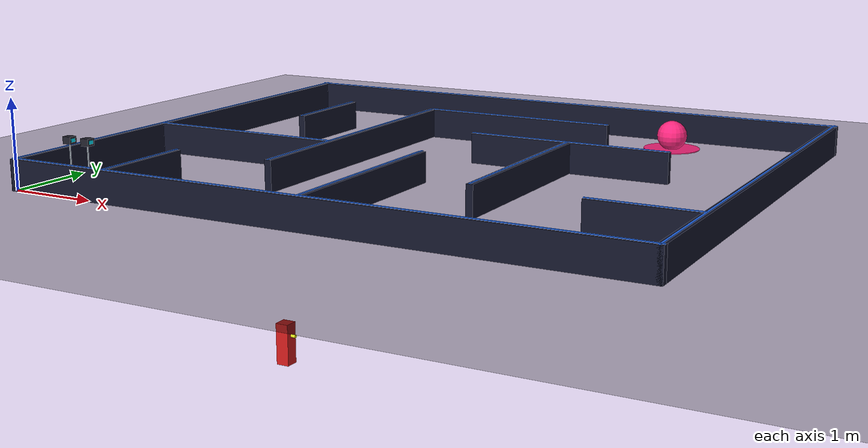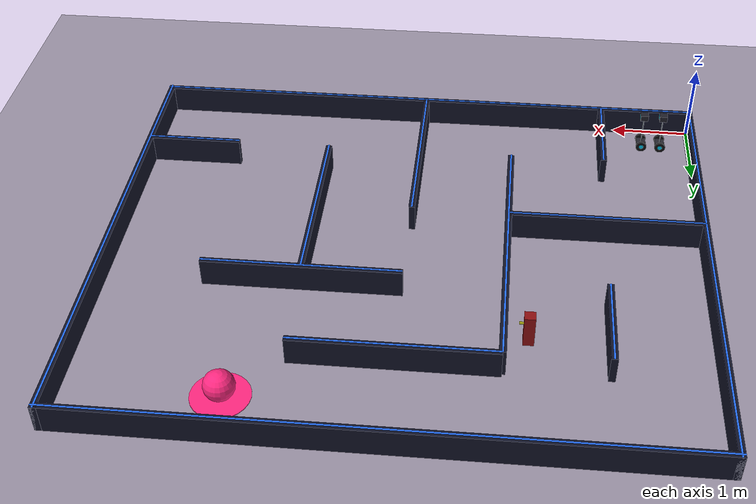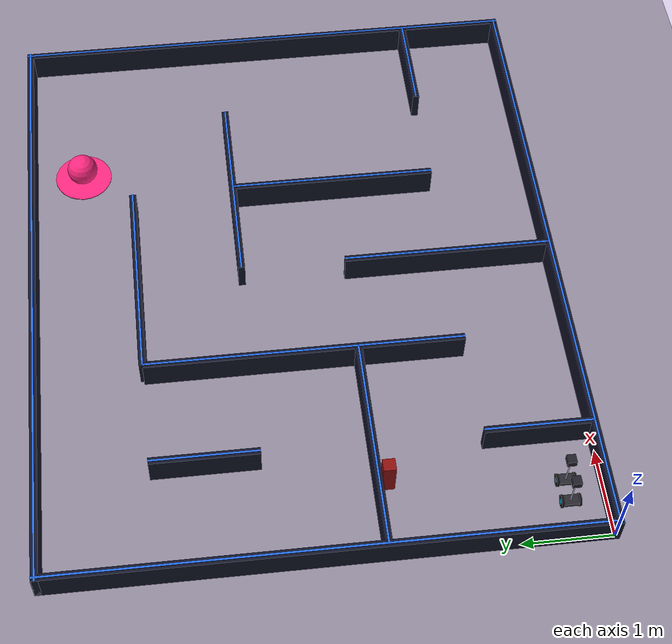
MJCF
<mujoco model="carl_elite">
  <compiler angle="radian" autolimits="true"/>
  <option gravity="0 0 -9.81" timestep="0.004166667" iterations="50" solver="Newton" tolerance="1e-10"/>

  <visual>
    <headlight ambient="0.28 0.28 0.33" diffuse="0.55 0.55 0.65" specular="0 0 0"/>
    <rgba haze="0.04 0.04 0.07 1"/>
    <map fogstart="7" fogend="18" znear="0.01"/>
    <quality shadowsize="4096"/>
  </visual>

  <asset>
    <texture name="grid" type="2d" builtin="checker" width="512" height="512"
             rgb1="0.035 0.042 0.090" rgb2="0.055 0.068 0.145"/>
    <material name="floor_mat"  texture="grid" texrepeat="10 10"
              reflectance="0.08" shininess="0.15" rgba="0.05 0.06 0.12 1"/>
    <material name="wall_mat"   rgba="0.07 0.08 0.16 1" reflectance="0.2" shininess="0.5"/>
    <material name="wall_glow"  rgba="0.15 0.45 1.0 1"  emission="0.6"  reflectance="0" shininess="1"/>
    <material name="chassis"    rgba="0.15 0.15 0.18 1" reflectance="0.2" shininess="0.6"/>
    <material name="tire"       rgba="0.05 0.05 0.06 1" reflectance="0"   shininess="0.2"/>
    <material name="hub"        rgba="0.0 0.75 0.9 1"   reflectance="0.4" shininess="0.9"/>
    <material name="neck_mat"   rgba="0.72 0.76 0.80 1" reflectance="0.3" shininess="0.7"/>
    <material name="head_mat"   rgba="0.12 0.12 0.16 1" reflectance="0.2" shininess="0.6"/>
    <material name="eye_mat"    rgba="0.0 0.9 1.0 1"    emission="0.5"  reflectance="0.5" shininess="1"/>
    <material name="goal_mat"   rgba="1.0 0.15 0.5 0.95" emission="0.7" reflectance="0.4" shininess="1"/>
  </asset>

  <default>
    <geom contype="1" conaffinity="1" condim="3"
          friction="0.85 0.005 0.0001"
          solimp="0.99 0.999 0.001" solref="0.004 1"/>
  </default>

  <worldbody>
    <!-- Lighting -->
    <light name="sun"  pos="3.6 3.0 7"  dir="-0.2 -0.2 -1" directional="true"
           ambient="0.22 0.22 0.28" diffuse="0.55 0.55 0.65" castshadow="true"/>
    <light name="fill" pos="0 0 5" dir="0.3 0.3 -1" directional="true"
           ambient="0.08 0.08 0.12" diffuse="0.18 0.22 0.32" castshadow="false"/>
    <light name="goal_spot" pos="5.4 5.4 2.8" dir="0 0 -1" directional="false"
           diffuse="0.7 0.08 0.35" attenuation="0 0.05 0.25" castshadow="false"/>

    <!-- Floor -->
    <geom name="floor" type="plane" size="12 12 0.1" pos="3.6 3.0 0" material="floor_mat"/>

    <!-- === MAZE WALLS (grid cell=1.2m) === -->
    <!-- Outer boundary -->
    <geom name="w_s"  type="box" size="3.64 0.04 0.175" pos="3.6  0.0  0.175" material="wall_mat"/>
    <geom name="w_n"  type="box" size="3.64 0.04 0.175" pos="3.6  6.0  0.175" material="wall_mat"/>
    <geom name="w_w"  type="box" size="0.04 3.04 0.175" pos="0.0  3.0  0.175" material="wall_mat"/>
    <geom name="w_e"  type="box" size="0.04 3.04 0.175" pos="7.2  3.0  0.175" material="wall_mat"/>
    <!-- Glow caps -->
    <geom name="wg_s" type="box" size="3.64 0.01 0.004" pos="3.6  0.0  0.354" material="wall_glow" contype="0" conaffinity="0"/>
    <geom name="wg_n" type="box" size="3.64 0.01 0.004" pos="3.6  6.0  0.354" material="wall_glow" contype="0" conaffinity="0"/>
    <geom name="wg_w" type="box" size="0.01 3.04 0.004" pos="0.0  3.0  0.354" material="wall_glow" contype="0" conaffinity="0"/>
    <geom name="wg_e" type="box" size="0.01 3.04 0.004" pos="7.2  3.0  0.354" material="wall_glow" contype="0" conaffinity="0"/>

    <!-- Internal walls -->
    <geom name="wi0" type="box" size="0.04 0.60 0.175" pos="1.2 0.6  0.175" material="wall_mat"/>
    <geom name="wi1" type="box" size="1.20 0.04 0.175" pos="1.2 2.4  0.175" material="wall_mat"/>
    <geom name="wi2" type="box" size="0.04 0.60 0.175" pos="1.2 4.2  0.175" material="wall_mat"/>
    <geom name="wi3" type="box" size="0.04 1.80 0.175" pos="2.4 3.0  0.175" material="wall_mat"/>
    <geom name="wi4" type="box" size="0.04 1.20 0.175" pos="3.6 1.2  0.175" material="wall_mat"/>
    <geom name="wi5" type="box" size="1.20 0.04 0.175" pos="3.6 4.8  0.175" material="wall_mat"/>
    <geom name="wi6" type="box" size="0.04 1.20 0.175" pos="4.8 2.4  0.175" material="wall_mat"/>
    <geom name="wi7" type="box" size="1.20 0.04 0.175" pos="4.8 3.6  0.175" material="wall_mat"/>
    <geom name="wi8" type="box" size="0.60 0.04 0.175" pos="6.6 1.2  0.175" material="wall_mat"/>
    <!-- Internal glow caps -->
    <geom name="wgi0" type="box" size="0.01 0.60 0.004" pos="1.2 0.6  0.354" material="wall_glow" contype="0" conaffinity="0"/>
    <geom name="wgi1" type="box" size="1.20 0.01 0.004" pos="1.2 2.4  0.354" material="wall_glow" contype="0" conaffinity="0"/>
    <geom name="wgi2" type="box" size="0.01 0.60 0.004" pos="1.2 4.2  0.354" material="wall_glow" contype="0" conaffinity="0"/>
    <geom name="wgi3" type="box" size="0.01 1.80 0.004" pos="2.4 3.0  0.354" material="wall_glow" contype="0" conaffinity="0"/>
    <geom name="wgi4" type="box" size="0.01 1.20 0.004" pos="3.6 1.2  0.354" material="wall_glow" contype="0" conaffinity="0"/>
    <geom name="wgi5" type="box" size="1.20 0.01 0.004" pos="3.6 4.8  0.354" material="wall_glow" contype="0" conaffinity="0"/>
    <geom name="wgi6" type="box" size="0.01 1.20 0.004" pos="4.8 2.4  0.354" material="wall_glow" contype="0" conaffinity="0"/>
    <geom name="wgi7" type="box" size="1.20 0.01 0.004" pos="4.8 3.6  0.354" material="wall_glow" contype="0" conaffinity="0"/>
    <geom name="wgi8" type="box" size="0.60 0.01 0.004" pos="6.6 1.2  0.354" material="wall_glow" contype="0" conaffinity="0"/>

    <!-- Goal beacon -->
    <geom name="goal_sphere" type="sphere"   size="0.18"      pos="5.4 5.4 0.18" material="goal_mat" contype="0" conaffinity="0"/>
    <geom name="goal_ring"   type="cylinder" size="0.34 0.005" pos="5.4 5.4 0.02" material="goal_mat" contype="0" conaffinity="0"/>

    <!-- === ROBOT A === -->
    <body name="base_A" pos="0.40 0.40 0.10">
      <freejoint name="fj_A"/>
      <geom name="chassis_A" type="box" size="0.06 0.08 0.02" material="chassis" mass="0.5"
            friction="0.2 0.005 0.0001"/>
      <inertial pos="0 0 0" mass="0.5" fullinertia="0.001 0.001 0.002 0 0 0"/>

      <body name="lwheel_A" pos="0 0.095 0">
        <joint name="lw_A" type="hinge" axis="0 1 0" damping="0.02" frictionloss="0.005"/>
        <geom name="lw_A_tire" type="cylinder" size="0.07 0.0125" euler="1.5708 0 0"
              material="tire" mass="0.2" friction="1.2 0.005 0.0001"/>
        <geom name="lw_A_hub"  type="cylinder" size="0.03 0.002"  euler="1.5708 0 0" pos="0 0.013 0"
              material="hub" contype="0" conaffinity="0" mass="0"/>
      </body>

      <body name="rwheel_A" pos="0 -0.095 0">
        <joint name="rw_A" type="hinge" axis="0 1 0" damping="0.02" frictionloss="0.005"/>
        <geom name="rw_A_tire" type="cylinder" size="0.07 0.0125" euler="1.5708 0 0"
              material="tire" mass="0.2" friction="1.2 0.005 0.0001"/>
        <geom name="rw_A_hub"  type="cylinder" size="0.03 0.002"  euler="1.5708 0 0" pos="0 -0.013 0"
              material="hub" contype="0" conaffinity="0" mass="0"/>
      </body>

      <body name="neck_A" pos="0 0 0.02">
        <joint name="neck_A" type="hinge" axis="0 1 0" range="-0.3 0.3" damping="0.1" stiffness="0" springref="0"/>
        <geom name="neck_A_g" type="cylinder" size="0.008 0.2" pos="0 0 0.2" material="neck_mat" mass="0.1"/>
        <inertial pos="0 0 0.2" mass="0.1" fullinertia="0.0013 0.0013 0.00001 0 0 0"/>
        <body name="head_A" pos="0 0 0.4">
          <geom name="head_A_g" type="box" size="0.05 0.05 0.04" material="head_mat" mass="1.5"/>
          <geom name="eye_A"    type="box" size="0.001 0.03 0.02" pos="0.051 0 0"
                material="eye_mat" contype="0" conaffinity="0" mass="0"/>
          <camera name="eye_cam_A" pos="0.051 0 0" xyaxes="0 -1 0 0 0 1" fovy="65"/>
          <inertial pos="0 0 0" mass="1.5" fullinertia="0.002 0.002 0.002 0 0 0"/>
        </body>
      </body>
    </body>

    <!-- === ROBOT B === -->
    <body name="base_B" pos="0.65 0.40 0.10">
      <freejoint name="fj_B"/>
      <geom name="chassis_B" type="box" size="0.06 0.08 0.02" material="chassis" mass="0.5"
            friction="0.2 0.005 0.0001"/>
      <inertial pos="0 0 0" mass="0.5" fullinertia="0.001 0.001 0.002 0 0 0"/>

      <body name="lwheel_B" pos="0 0.095 0">
        <joint name="lw_B" type="hinge" axis="0 1 0" damping="0.02" frictionloss="0.005"/>
        <geom name="lw_B_tire" type="cylinder" size="0.07 0.0125" euler="1.5708 0 0"
              material="tire" mass="0.2" friction="1.2 0.005 0.0001"/>
        <geom name="lw_B_hub"  type="cylinder" size="0.03 0.002"  euler="1.5708 0 0" pos="0 0.013 0"
              material="hub" contype="0" conaffinity="0" mass="0"/>
      </body>

      <body name="rwheel_B" pos="0 -0.095 0">
        <joint name="rw_B" type="hinge" axis="0 1 0" damping="0.02" frictionloss="0.005"/>
        <geom name="rw_B_tire" type="cylinder" size="0.07 0.0125" euler="1.5708 0 0"
              material="tire" mass="0.2" friction="1.2 0.005 0.0001"/>
        <geom name="rw_B_hub"  type="cylinder" size="0.03 0.002"  euler="1.5708 0 0" pos="0 -0.013 0"
              material="hub" contype="0" conaffinity="0" mass="0"/>
      </body>

      <body name="neck_B" pos="0 0 0.02">
        <joint name="neck_B" type="hinge" axis="0 1 0" range="-0.3 0.3" damping="0.1" stiffness="0" springref="0"/>
        <geom name="neck_B_g" type="cylinder" size="0.008 0.2" pos="0 0 0.2" material="neck_mat" mass="0.1"/>
        <inertial pos="0 0 0.2" mass="0.1" fullinertia="0.0013 0.0013 0.00001 0 0 0"/>
        <body name="head_B" pos="0 0 0.4">
          <geom name="head_B_g" type="box" size="0.05 0.05 0.04" material="head_mat" mass="1.5"/>
          <geom name="eye_B"    type="box" size="0.001 0.03 0.02" pos="0.051 0 0"
                material="eye_mat" contype="0" conaffinity="0" mass="0"/>
          <camera name="eye_cam_B" pos="0.051 0 0" xyaxes="0 -1 0 0 0 1" fovy="65"/>
          <inertial pos="0 0 0" mass="1.5" fullinertia="0.002 0.002 0.002 0 0 0"/>
        </body>
      </body>
    </body>

    <!-- === PREDATOR (spiky tall box) === -->
    <body name="base_predator" pos="2.0 2.0 -2.0">
      <freejoint name="fj_predator"/>
      <geom name="chassis_predator" type="box" size="0.08 0.08 0.25" rgba="0.8 0.1 0.1 1" mass="1.0"/>
      <geom name="spike_front" type="cylinder" size="0.02 0.05" euler="0 1.5708 0" pos="0.09 0 0.1" rgba="0.9 0.9 0.1 1"/>
    </body>

  </worldbody>

  <!-- Actuators: 0=lw_A, 1=rw_A, 2=neck_A, 3=lw_B, 4=rw_B, 5=neck_B -->
  <actuator>
    <motor    name="lw_A_m"  joint="lw_A"   ctrllimited="true" ctrlrange="-12 12"/>
    <motor    name="rw_A_m"  joint="rw_A"   ctrllimited="true" ctrlrange="-12 12"/>
    <position name="nk_A_p"  joint="neck_A" kp="12" ctrllimited="true" ctrlrange="-0.3 0.3"/>
    <motor    name="lw_B_m"  joint="lw_B"   ctrllimited="true" ctrlrange="-12 12"/>
    <motor    name="rw_B_m"  joint="rw_B"   ctrllimited="true" ctrlrange="-12 12"/>
    <position name="nk_B_p"  joint="neck_B" kp="12" ctrllimited="true" ctrlrange="-0.3 0.3"/>
  </actuator>

  <sensor>
    <framequat   name="quat_A"   objtype="body" objname="base_A"/>
    <framelinvel name="lvel_A"   objtype="body" objname="base_A"/>
    <frameangvel name="avel_A"   objtype="body" objname="base_A"/>
    <jointpos    name="neck_p_A" joint="neck_A"/>
    <framequat   name="quat_B"   objtype="body" objname="base_B"/>
    <framelinvel name="lvel_B"   objtype="body" objname="base_B"/>
    <frameangvel name="avel_B"   objtype="body" objname="base_B"/>
    <jointpos    name="neck_p_B" joint="neck_B"/>
  </sensor>

</mujoco>
